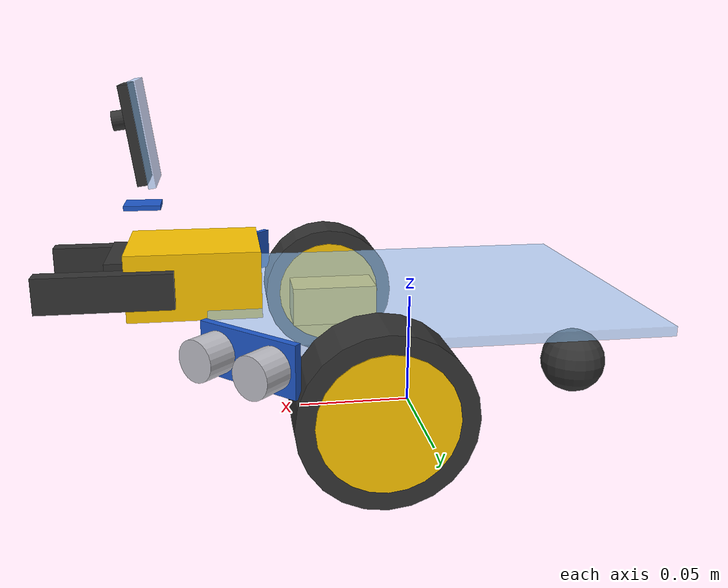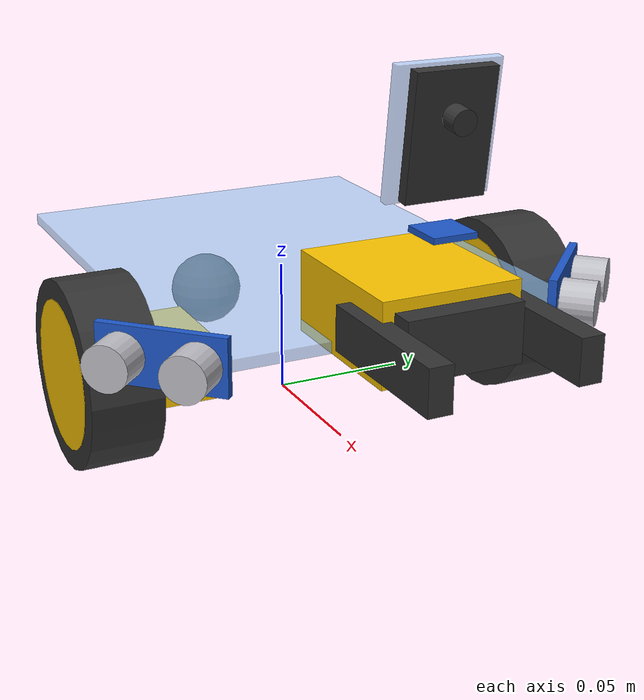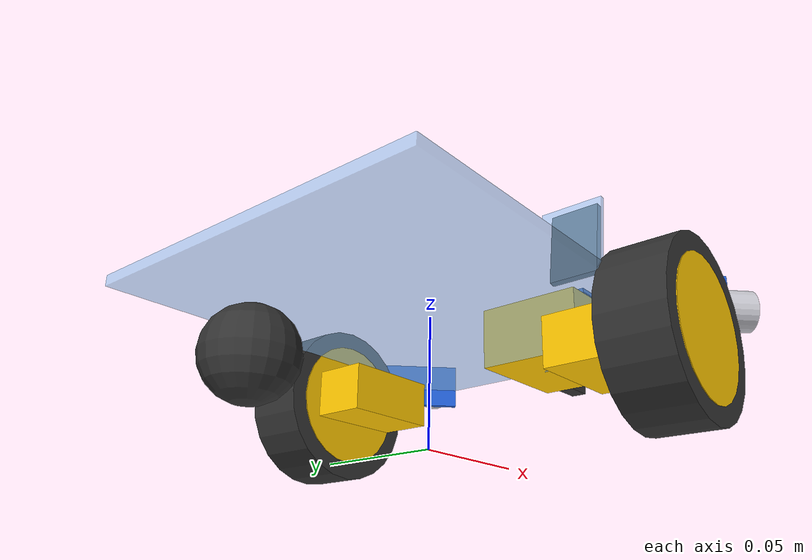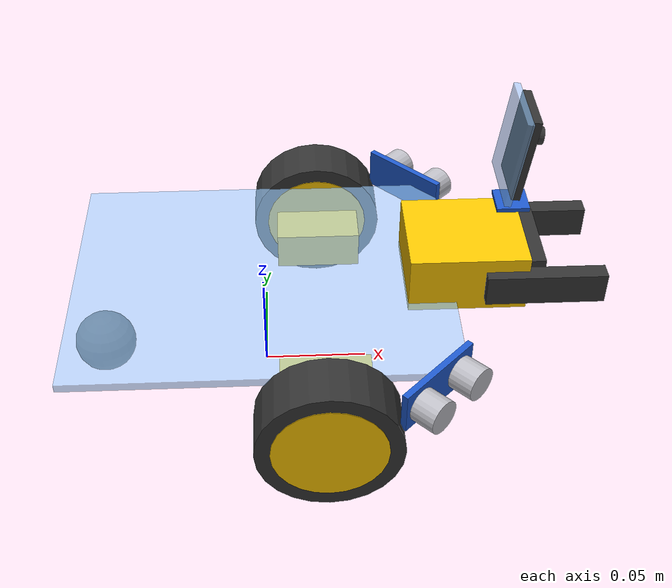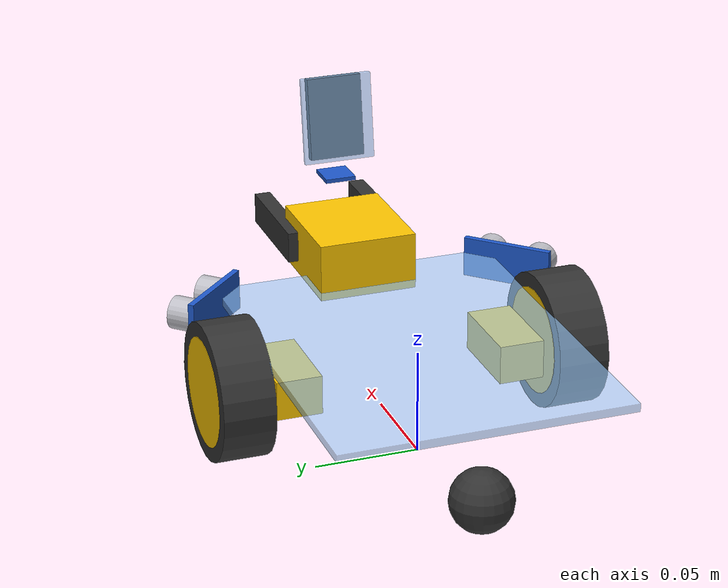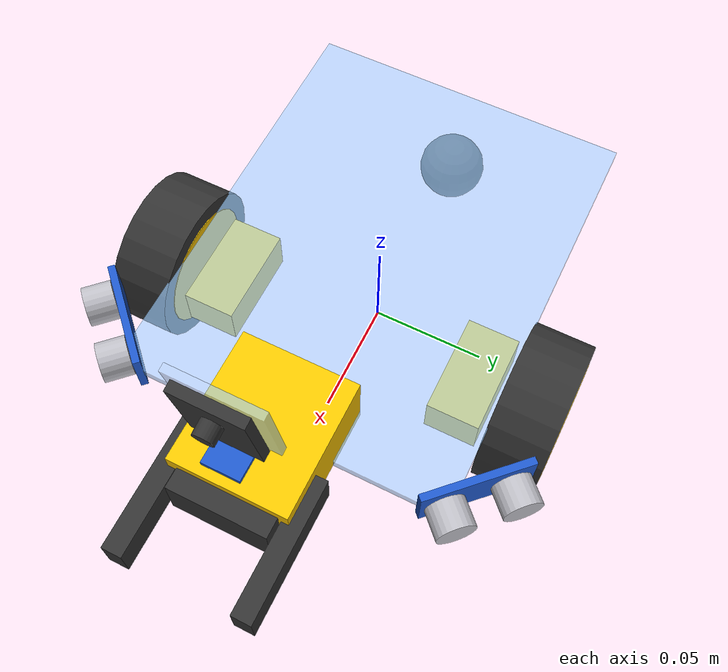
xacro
<?xml version="1.0"?>
<robot name="safety_robot" xmlns:xacro="http://www.ros.org/wiki/xacro">

  <!-- ── Materials ─────────────────────────────────────────────── -->
  <material name="acrylic">
    <color rgba="0.6 0.8 1.0 0.6"/>
  </material>
  <material name="dark_grey">
    <color rgba="0.2 0.2 0.2 1.0"/>
  </material>
  <material name="yellow">
    <color rgba="1.0 0.78 0.0 1.0"/>
  </material>
  <material name="blue">
    <color rgba="0.12 0.35 0.8 1.0"/>
  </material>
  <material name="silver">
    <color rgba="0.75 0.75 0.78 1.0"/>
  </material>

  <!-- ── Chassis Base ──────────────────────────────────────────── -->
  <link name="base_footprint"/>

  <joint name="base_footprint_joint" type="fixed">
    <parent link="base_footprint"/>
    <child link="base_link"/>
    <origin xyz="0 0 0.053" rpy="0 0 0"/>
  </joint>

  <link name="base_link">
    <!-- Simplified chassis plate -->
    <visual>
      <geometry><box size="0.18 0.14 0.004"/></geometry>
      <material name="acrylic"/>
    </visual>
    <collision>
      <geometry><box size="0.18 0.14 0.04"/></geometry>
    </collision>
    <inertial>
      <!-- CoM placed toward rear (-0.035m) to account for rear battery, breadboard, and Pico -->
      <mass value="0.45"/>
      <origin xyz="-0.035 0.0 0.0" rpy="0 0 0"/>
      <inertia ixx="0.001" ixy="0" ixz="0"
               iyy="0.001" iyz="0" izz="0.002"/>
    </inertial>
  </link>

  <!-- ── TT DC Motors (Positioned directly next to the wheels) ─── -->
  <link name="left_motor">
    <visual>
      <geometry><box size="0.042 0.022 0.019"/></geometry>
      <material name="yellow"/>
    </visual>
    <inertial>
      <mass value="0.035"/>
      <origin xyz="0 0 0" rpy="0 0 0"/>
      <inertia ixx="0.00001" ixy="0" ixz="0"
               iyy="0.00001" iyz="0" izz="0.00001"/>
    </inertial>
  </link>

  <joint name="left_motor_joint" type="fixed">
    <parent link="base_link"/>
    <child link="left_motor"/>
    <origin xyz="0.028 0.055 -0.02" rpy="0 0 0"/>
  </joint>

  <link name="right_motor">
    <visual>
      <geometry><box size="0.042 0.022 0.019"/></geometry>
      <material name="yellow"/>
    </visual>
    <inertial>
      <mass value="0.035"/>
      <origin xyz="0 0 0" rpy="0 0 0"/>
      <inertia ixx="0.00001" ixy="0" ixz="0"
               iyy="0.00001" iyz="0" izz="0.00001"/>
    </inertial>
  </link>

  <joint name="right_motor_joint" type="fixed">
    <parent link="base_link"/>
    <child link="right_motor"/>
    <origin xyz="0.028 -0.055 -0.02" rpy="0 0 0"/>
  </joint>

  <!-- ── Left Drive Wheel (Shifted forward to x=0.028) ──────────── -->
  <link name="left_wheel">
    <visual>
      <geometry><cylinder radius="0.026" length="0.0255"/></geometry>
      <material name="yellow"/>
    </visual>
    <visual>
      <geometry><cylinder radius="0.033" length="0.025"/></geometry>
      <material name="dark_grey"/>
    </visual>
    <collision>
      <geometry><cylinder radius="0.033" length="0.025"/></geometry>
    </collision>
    <inertial>
      <mass value="0.08"/>
      <origin xyz="0 0 0" rpy="0 0 0"/>
      <inertia ixx="0.0001" ixy="0" ixz="0"
               iyy="0.0001" iyz="0" izz="0.0001"/>
    </inertial>
  </link>

  <joint name="left_wheel_joint" type="continuous">
    <parent link="base_link"/>
    <child link="left_wheel"/>
    <origin xyz="0.028 0.082 -0.02" rpy="-1.5708 0 0"/>
    <axis xyz="0 0 1"/>
    <dynamics damping="0.1" friction="0.1"/>
  </joint>

  <!-- ── Right Drive Wheel (Shifted forward to x=0.028) ─────────── -->
  <link name="right_wheel">
    <visual>
      <geometry><cylinder radius="0.026" length="0.0255"/></geometry>
      <material name="yellow"/>
    </visual>
    <visual>
      <geometry><cylinder radius="0.033" length="0.025"/></geometry>
      <material name="dark_grey"/>
    </visual>
    <collision>
      <geometry><cylinder radius="0.033" length="0.025"/></geometry>
    </collision>
    <inertial>
      <mass value="0.08"/>
      <origin xyz="0 0 0" rpy="0 0 0"/>
      <inertia ixx="0.0001" ixy="0" ixz="0"
               iyy="0.0001" iyz="0" izz="0.0001"/>
    </inertial>
  </link>

  <joint name="right_wheel_joint" type="continuous">
    <parent link="base_link"/>
    <child link="right_wheel"/>
    <origin xyz="0.028 -0.082 -0.02" rpy="-1.5708 0 0"/>
    <axis xyz="0 0 1"/>
    <dynamics damping="0.1" friction="0.1"/>
  </joint>

  <!-- ── Rear Caster (Ground-aligned to z=-0.038) ────────────────── -->
  <link name="caster_wheel">
    <visual>
      <geometry><sphere radius="0.015"/></geometry>
      <material name="dark_grey"/>
    </visual>
    <collision>
      <geometry><sphere radius="0.015"/></geometry>
    </collision>
    <inertial>
      <mass value="0.025"/>
      <origin xyz="0 0 0" rpy="0 0 0"/>
      <inertia ixx="0.00001" ixy="0" ixz="0"
               iyy="0.00001" iyz="0" izz="0.00001"/>
    </inertial>
  </link>

  <joint name="caster_joint" type="fixed">
    <parent link="base_link"/>
    <child link="caster_wheel"/>
    <origin xyz="-0.08 0.0 -0.038"/>
  </joint>

  <!-- ── Left Ultrasonic Sensor (Facing Diagonal: +45 deg) ──────── -->
  <link name="sonar_left">
    <visual>
      <origin xyz="0 0 0" rpy="0 0 0"/>
      <geometry><box size="0.003 0.045 0.02"/></geometry>
      <material name="blue"/>
    </visual>
    <visual>
      <origin xyz="0.008 0.013 0" rpy="0 1.5708 0"/>
      <geometry><cylinder radius="0.008" length="0.012"/></geometry>
      <material name="silver"/>
    </visual>
    <visual>
      <origin xyz="0.008 -0.013 0" rpy="0 1.5708 0"/>
      <geometry><cylinder radius="0.008" length="0.012"/></geometry>
      <material name="silver"/>
    </visual>
    <inertial>
      <mass value="0.015"/>
      <origin xyz="0 0 0" rpy="0 0 0"/>
      <inertia ixx="0.000005" ixy="0" ixz="0"
               iyy="0.000005" iyz="0" izz="0.000005"/>
    </inertial>
  </link>

  <joint name="sonar_left_joint" type="fixed">
    <parent link="base_link"/>
    <child link="sonar_left"/>
    <!-- Positioned on left diagonal front wing, yaw +45 deg -->
    <origin xyz="0.075 0.075 0.0" rpy="0 0 0.7854"/>
  </joint>

  <!-- ── Right Ultrasonic Sensor (Facing Diagonal: -45 deg) ─────── -->
  <link name="sonar_right">
    <visual>
      <origin xyz="0 0 0" rpy="0 0 0"/>
      <geometry><box size="0.003 0.045 0.02"/></geometry>
      <material name="blue"/>
    </visual>
    <visual>
      <origin xyz="0.008 0.013 0" rpy="0 1.5708 0"/>
      <geometry><cylinder radius="0.008" length="0.012"/></geometry>
      <material name="silver"/>
    </visual>
    <visual>
      <origin xyz="0.008 -0.013 0" rpy="0 1.5708 0"/>
      <geometry><cylinder radius="0.008" length="0.012"/></geometry>
      <material name="silver"/>
    </visual>
    <inertial>
      <mass value="0.015"/>
      <origin xyz="0 0 0" rpy="0 0 0"/>
      <inertia ixx="0.000005" ixy="0" ixz="0"
               iyy="0.000005" iyz="0" izz="0.000005"/>
    </inertial>
  </link>

  <joint name="sonar_right_joint" type="fixed">
    <parent link="base_link"/>
    <child link="sonar_right"/>
    <!-- Positioned on right diagonal front wing, yaw -45 deg -->
    <origin xyz="0.075 -0.075 0.0" rpy="0 0 -0.7854"/>
  </joint>

  <!-- ── Gripper Base (Yellow Motor Housing) ────────────────────── -->
  <link name="gripper_base">
    <visual>
      <origin xyz="0 0 0" rpy="0 0 0"/>
      <geometry><box size="0.055 0.048 0.028"/></geometry>
      <material name="yellow"/>
    </visual>
    <visual>
      <origin xyz="0.028 0 0" rpy="0 0 0"/>
      <geometry><box size="0.015 0.04 0.02"/></geometry>
      <material name="dark_grey"/>
    </visual>
    <inertial>
      <mass value="0.055"/>
      <origin xyz="0 0 0" rpy="0 0 0"/>
      <inertia ixx="0.00005" ixy="0" ixz="0"
               iyy="0.00005" iyz="0" izz="0.00005"/>
    </inertial>
  </link>

  <joint name="gripper_tilt_joint" type="revolute">
    <parent link="base_link"/>
    <child link="gripper_base"/>
    <origin xyz="0.095 0.0 0.012" rpy="0 0 0"/>
    <axis xyz="0 1 0"/>
    <limit lower="-0.8" upper="0.0" effort="1.0" velocity="1.0"/>
    <dynamics damping="0.05" friction="0.05"/>
  </joint>

  <!-- ── Gripper Left Arm (Black Plastic Claw) ──────────────────── -->
  <link name="gripper_left">
    <visual>
      <geometry><box size="0.055 0.008 0.015"/></geometry>
      <material name="dark_grey"/>
    </visual>
    <collision>
      <geometry><box size="0.055 0.008 0.015"/></geometry>
    </collision>
    <inertial>
      <mass value="0.018"/>
      <origin xyz="0 0 0" rpy="0 0 0"/>
      <inertia ixx="0.00001" ixy="0" ixz="0"
               iyy="0.00001" iyz="0" izz="0.00001"/>
    </inertial>
  </link>

  <joint name="gripper_left_joint" type="prismatic">
    <parent link="gripper_base"/>
    <child link="gripper_left"/>
    <origin xyz="0.035 0.025 0.0"/>
    <axis xyz="0 1 0"/>
    <limit lower="0.0" upper="0.0225" effort="1.0" velocity="0.05"/>
    <dynamics damping="0.05" friction="0.05"/>
  </joint>

  <!-- ── Gripper Right Arm (Black Plastic Claw) ─────────────────── -->
  <link name="gripper_right">
    <visual>
      <geometry><box size="0.055 0.008 0.015"/></geometry>
      <material name="dark_grey"/>
    </visual>
    <collision>
      <geometry><box size="0.055 0.008 0.015"/></geometry>
    </collision>
    <inertial>
      <mass value="0.018"/>
      <origin xyz="0 0 0" rpy="0 0 0"/>
      <inertia ixx="0.00001" ixy="0" ixz="0"
               iyy="0.00001" iyz="0" izz="0.00001"/>
    </inertial>
  </link>

  <joint name="gripper_right_joint" type="prismatic">
    <parent link="gripper_base"/>
    <child link="gripper_right"/>
    <origin xyz="0.035 -0.025 0.0"/>
    <axis xyz="0 -1 0"/>
    <limit lower="0.0" upper="0.0225" effort="1.0" velocity="0.05"/>
    <dynamics damping="0.05" friction="0.05"/>
  </joint>

  <!-- ── Camera (ESP32-CAM: Level / straight forward, rpy=0 0 0) ── -->
  <link name="camera_link">
    <!-- Acrylic Camera Bracket -->
    <visual>
      <origin xyz="-0.004 0.0 0.01" rpy="0 0 0"/>
      <geometry><box size="0.003 0.035 0.042"/></geometry>
      <material name="acrylic"/>
    </visual>
    <!-- ESP32-CAM PCB -->
    <visual>
      <origin xyz="0.0 0.0 0.01" rpy="0 0 0"/>
      <geometry><box size="0.004 0.027 0.04"/></geometry>
      <material name="dark_grey"/>
    </visual>
    <!-- Camera Lens pointing forward along +X -->
    <visual>
      <origin xyz="0.005 0.0 0.016" rpy="0 1.5708 0"/>
      <geometry><cylinder radius="0.004" length="0.006"/></geometry>
      <material name="dark_grey"/>
    </visual>
    <inertial>
      <mass value="0.012"/>
      <origin xyz="0 0 0" rpy="0 0 0"/>
      <inertia ixx="0.000002" ixy="0" ixz="0"
               iyy="0.000002" iyz="0" izz="0.000002"/>
    </inertial>
  </link>

  <!-- Camera joint: level / straight forward (rpy=0 0 0) on top of gripper -->
  <joint name="camera_joint" type="fixed">
    <parent link="gripper_base"/>
    <child link="camera_link"/>
    <origin xyz="0.020 0.0 0.050" rpy="0 0.1354 0"/>
  </joint>

  <!-- Optical frame for ROS 2 camera processing -->
  <link name="camera_optical_link"/>
  <joint name="camera_optical_joint" type="fixed">
    <parent link="camera_link"/>
    <child link="camera_optical_link"/>
    <origin xyz="0 0 0" rpy="-1.5708 0 -1.5708"/>
  </joint>

  <!-- ── IMU Link ───────────────────────────────────────────────── -->
  <link name="imu_link">
    <visual>
      <geometry><box size="0.015 0.015 0.002"/></geometry>
      <material name="blue"/>
    </visual>
    <inertial>
      <mass value="0.002"/>
      <origin xyz="0 0 0" rpy="0 0 0"/>
      <inertia ixx="0.0000001" ixy="0" ixz="0"
               iyy="0.0000001" iyz="0" izz="0.0000001"/>
    </inertial>
  </link>

  <joint name="imu_joint" type="fixed">
    <parent link="gripper_base"/>
    <child link="imu_link"/>
    <origin xyz="0.020 0.0 0.030" rpy="0 0 0"/>
  </joint>

  <!-- ── Gazebo Surface Friction ───────────────────────────────── -->
  <gazebo reference="left_wheel">
    <mu1>1.0</mu1>
    <mu2>1.0</mu2>
    <kp>1000000.0</kp>
    <kd>100.0</kd>
  </gazebo>
  <gazebo reference="right_wheel">
    <mu1>1.0</mu1>
    <mu2>1.0</mu2>
    <kp>1000000.0</kp>
    <kd>100.0</kd>
  </gazebo>
  <gazebo reference="caster_wheel">
    <mu1>0.001</mu1>
    <mu2>0.001</mu2>
  </gazebo>

  <!-- ══════════════════════════════════════════════════════════════
       ros2_control hardware interface
  ══════════════════════════════════════════════════════════════════ -->
  <ros2_control name="gz_ros2_control" type="system">
    <hardware>
      <plugin>gz_ros2_control/GazeboSimSystem</plugin>
    </hardware>

    <!-- Drive wheels — velocity-controlled -->
    <joint name="left_wheel_joint">
      <command_interface name="velocity">
        <param name="min">-10</param>
        <param name="max">10</param>
      </command_interface>
      <state_interface name="position"/>
      <state_interface name="velocity"/>
    </joint>

    <joint name="right_wheel_joint">
      <command_interface name="velocity">
        <param name="min">-10</param>
        <param name="max">10</param>
      </command_interface>
      <state_interface name="position"/>
      <state_interface name="velocity"/>
    </joint>

    <!-- Gripper joints — position-controlled -->
    <joint name="gripper_tilt_joint">
      <command_interface name="position">
        <param name="min">-0.8</param>
        <param name="max">0.0</param>
      </command_interface>
      <state_interface name="position"/>
      <state_interface name="velocity"/>
    </joint>

    <joint name="gripper_left_joint">
      <command_interface name="position">
        <param name="min">0.0</param>
        <param name="max">0.0225</param>
      </command_interface>
      <state_interface name="position"/>
    </joint>

    <joint name="gripper_right_joint">
      <command_interface name="position">
        <param name="min">0.0</param>
        <param name="max">0.0225</param>
      </command_interface>
      <state_interface name="position"/>
    </joint>
  </ros2_control>

  <!-- ══════════════════════════════════════════════════════════════
       Gazebo Harmonic sensor plugins (Bound to specific links)
  ══════════════════════════════════════════════════════════════════ -->
  <gz:gz_ros2_control
      xmlns:gz="http://gazebosim.org/schema">
    <parameters>$(find robot_sim)/config/ros2_controllers.yaml</parameters>
  </gz:gz_ros2_control>

  <!-- Camera Sensor (attached to camera_link, referenced to camera_optical_link) -->
  <gazebo reference="camera_link">
    <sensor name="gripper_camera" type="camera">
      <topic>/gz/camera/image</topic>
      <camera>
        <optical_frame_id>camera_optical_link</optical_frame_id>
        <horizontal_fov>1.047</horizontal_fov>
        <image>
          <width>640</width>
          <height>480</height>
          <format>R8G8B8</format>
        </image>
        <clip>
          <near>0.01</near>
          <far>10.0</far>
        </clip>
      </camera>
      <update_rate>30</update_rate>
      <visualize>false</visualize>
      <always_on>true</always_on>
    </sensor>
  </gazebo>

  <!-- Left Ultrasonic Sensor (attached to sonar_left) -->
  <gazebo reference="sonar_left">
    <sensor name="sonar_left" type="gpu_lidar">
      <topic>/gz/sonar_left/scan</topic>
      <update_rate>20</update_rate>
      <always_on>true</always_on>
      <visualize>true</visualize>
      <ray>
        <scan>
          <horizontal>
            <samples>5</samples>
            <resolution>1</resolution>
            <min_angle>-0.13</min_angle>
            <max_angle>0.13</max_angle>
          </horizontal>
          <vertical>
            <samples>5</samples>
            <resolution>1</resolution>
            <min_angle>-0.13</min_angle>
            <max_angle>0.13</max_angle>
          </vertical>
        </scan>
        <range>
          <min>0.02</min>
          <max>4.0</max>
          <resolution>0.01</resolution>
        </range>
      </ray>
    </sensor>
  </gazebo>

  <!-- Right Ultrasonic Sensor (attached to sonar_right) -->
  <gazebo reference="sonar_right">
    <sensor name="sonar_right" type="gpu_lidar">
      <topic>/gz/sonar_right/scan</topic>
      <update_rate>20</update_rate>
      <always_on>true</always_on>
      <visualize>true</visualize>
      <ray>
        <scan>
          <horizontal>
            <samples>5</samples>
            <resolution>1</resolution>
            <min_angle>-0.13</min_angle>
            <max_angle>0.13</max_angle>
          </horizontal>
          <vertical>
            <samples>5</samples>
            <resolution>1</resolution>
            <min_angle>-0.13</min_angle>
            <max_angle>0.13</max_angle>
          </vertical>
        </scan>
        <range>
          <min>0.02</min>
          <max>4.0</max>
          <resolution>0.01</resolution>
        </range>
      </ray>
    </sensor>
  </gazebo>

  <!-- IMU Sensor (attached to imu_link) -->
  <gazebo reference="imu_link">
    <sensor name="imu_sensor" type="imu">
      <topic>/gz/imu</topic>
      <update_rate>100</update_rate>
      <always_on>true</always_on>
      <imu>
        <angular_velocity>
          <x><noise type="gaussian"><mean>0</mean><stddev>0.001</stddev></noise></x>
          <y><noise type="gaussian"><mean>0</mean><stddev>0.001</stddev></noise></y>
          <z><noise type="gaussian"><mean>0</mean><stddev>0.001</stddev></noise></z>
        </angular_velocity>
        <linear_acceleration>
          <x><noise type="gaussian"><mean>0</mean><stddev>0.01</stddev></noise></x>
          <y><noise type="gaussian"><mean>0</mean><stddev>0.01</stddev></noise></y>
          <z><noise type="gaussian"><mean>0</mean><stddev>0.01</stddev></noise></z>
        </linear_acceleration>
      </imu>
    </sensor>
  </gazebo>

</robot>
